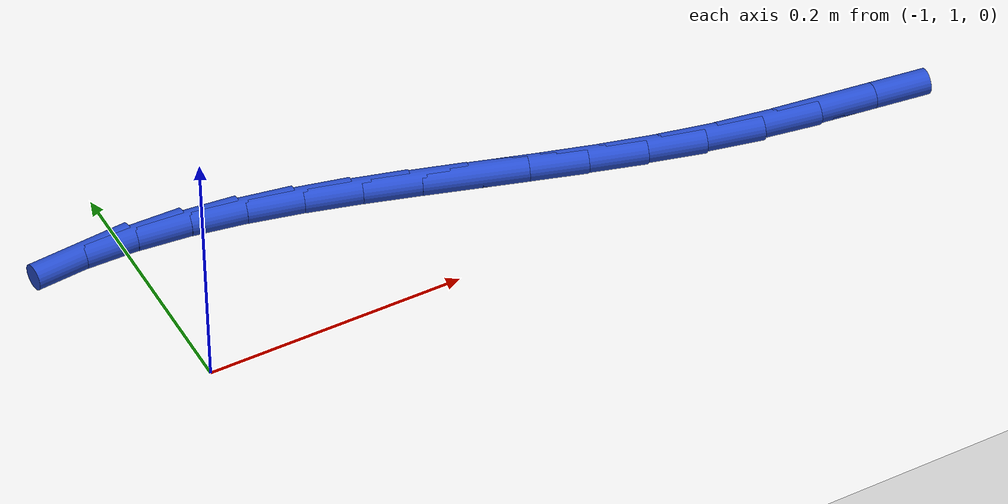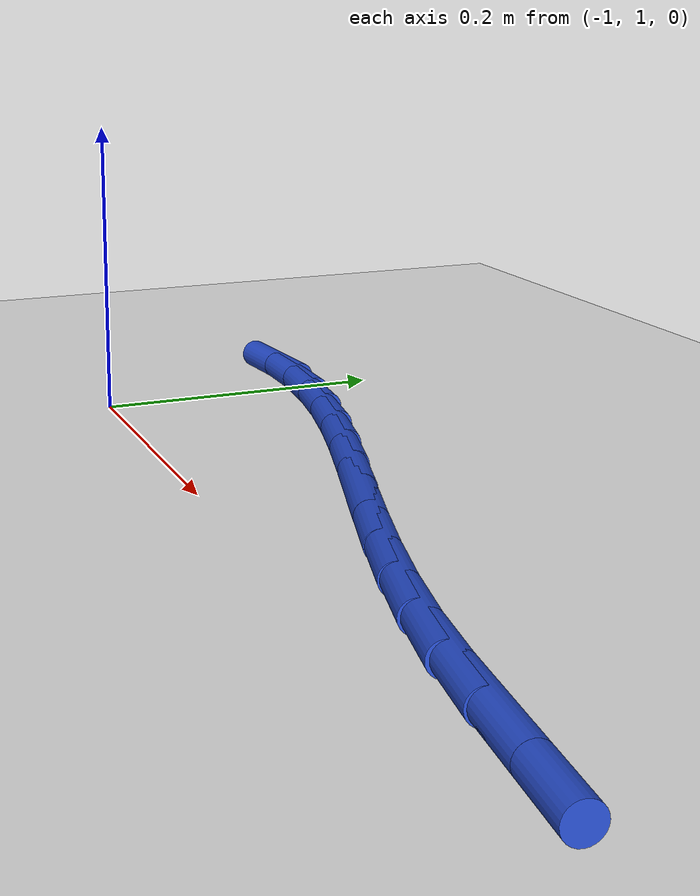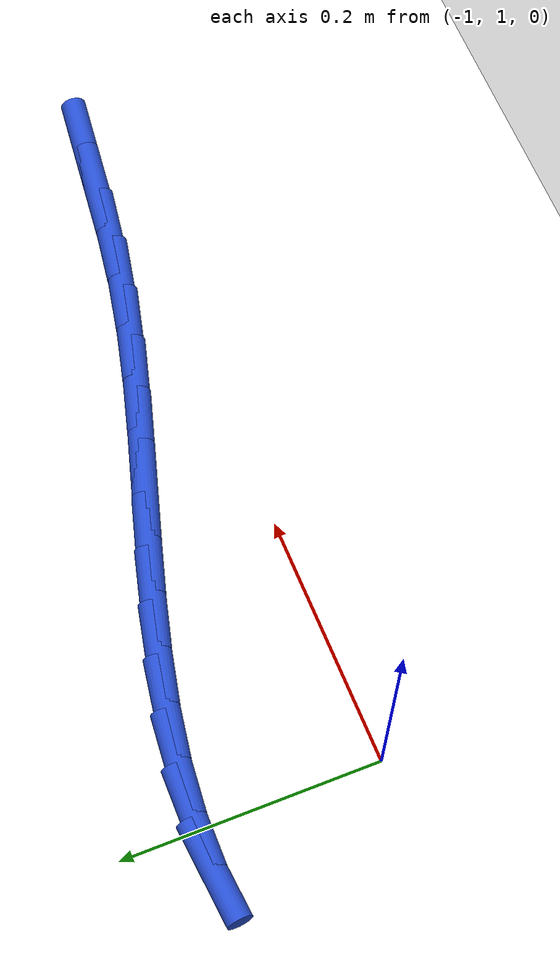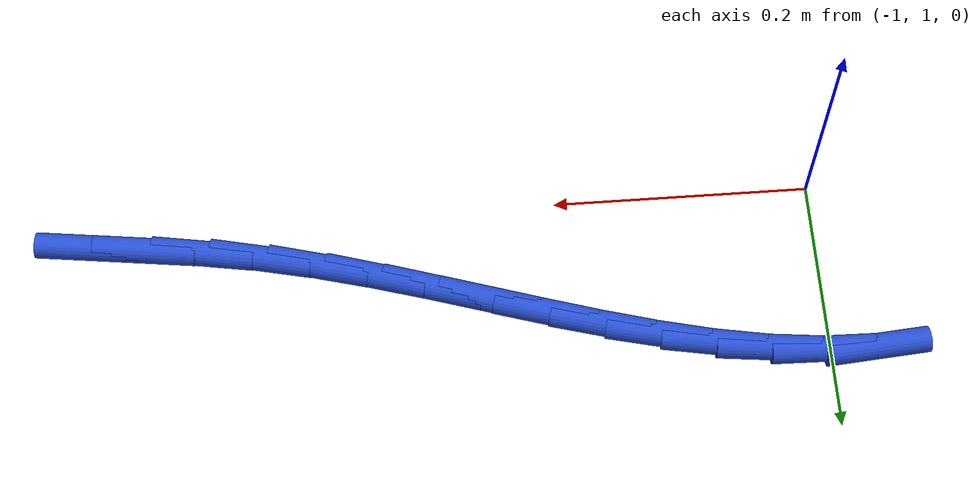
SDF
<sdf version="1.6">
 <world name="default">
  <model name="ground_plane">
   <static>1</static>
   <link name="link">
    <collision name="collision">
     <geometry><plane><normal>0 0 1</normal><size>100 100</size></plane></geometry>
     <surface><friction><ode><mu>100</mu><mu2>50</mu2></ode></friction></surface>
    </collision>
    <visual name="visual">
     <cast_shadows>0</cast_shadows>
     <geometry><plane><normal>0 0 1</normal><size>100 100</size></plane></geometry>
     <material>
      <script><uri>file://media/materials/scripts/gazebo.material</uri><name>Gazebo/WhiteGlow</name></script>
     </material>
    </visual>
   </link>
  </model>
  <model name="line">
   <link name="link_27">
    <pose>-0.4364283235287667 1.0160937508960022 0.01 0 1.57 -0.12524716902368274</pose>
    <collision name="collision">
     <geometry><cylinder><radius>0.01</radius><length>0.08</length></cylinder></geometry>
    </collision>
    <visual name="visual">
     <material>
      <script><name>Gazebo/Blue</name><uri>file://media/materials/scripts/gazebo.material</uri></script>
     </material>
     <geometry><cylinder><radius>0.01</radius><length>0.08</length></cylinder></geometry>
    </visual>
   </link>
   <link name="link_28">
    <pose>-0.48043833811379344 1.02163488529879 0.01 0 1.57 -0.1263556645864961</pose>
    <collision name="collision">
     <geometry><cylinder><radius>0.01</radius><length>0.08</length></cylinder></geometry>
    </collision>
    <visual name="visual">
     <material>
      <script><name>Gazebo/Blue</name><uri>file://media/materials/scripts/gazebo.material</uri></script>
     </material>
     <geometry><cylinder><radius>0.01</radius><length>0.08</length></cylinder></geometry>
    </visual>
   </link>
   <link name="link_29">
    <pose>-0.5252320170249823 1.0273251356947102 0.01 0 1.57 -0.16312141012108544</pose>
    <collision name="collision">
     <geometry><cylinder><radius>0.01</radius><length>0.08</length></cylinder></geometry>
    </collision>
    <visual name="visual">
     <material>
      <script><name>Gazebo/Blue</name><uri>file://media/materials/scripts/gazebo.material</uri></script>
     </material>
     <geometry><cylinder><radius>0.01</radius><length>0.08</length></cylinder></geometry>
    </visual>
   </link>
   <link name="link_30">
    <pose>-0.5699569184042637 1.034686129350251 0.01 0 1.57 -0.2158428964799083</pose>
    <collision name="collision">
     <geometry><cylinder><radius>0.01</radius><length>0.08</length></cylinder></geometry>
    </collision>
    <visual name="visual">
     <material>
      <script><name>Gazebo/Blue</name><uri>file://media/materials/scripts/gazebo.material</uri></script>
     </material>
     <geometry><cylinder><radius>0.01</radius><length>0.08</length></cylinder></geometry>
    </visual>
   </link>
   <link name="link_31">
    <pose>-0.6141288314327578 1.0443711953389343 0.01 0 1.57 -0.2575652141031595</pose>
    <collision name="collision">
     <geometry><cylinder><radius>0.01</radius><length>0.08</length></cylinder></geometry>
    </collision>
    <visual name="visual">
     <material>
      <script><name>Gazebo/Blue</name><uri>file://media/materials/scripts/gazebo.material</uri></script>
     </material>
     <geometry><cylinder><radius>0.01</radius><length>0.08</length></cylinder></geometry>
    </visual>
   </link>
   <link name="link_32">
    <pose>-0.6577594891147347 1.0558642145356778 0.01 0 1.57 -0.2863775817328964</pose>
    <collision name="collision">
     <geometry><cylinder><radius>0.01</radius><length>0.08</length></cylinder></geometry>
    </collision>
    <visual name="visual">
     <material>
      <script><name>Gazebo/Blue</name><uri>file://media/materials/scripts/gazebo.material</uri></script>
     </material>
     <geometry><cylinder><radius>0.01</radius><length>0.08</length></cylinder></geometry>
    </visual>
   </link>
   <link name="link_33">
    <pose>-0.70089560065749 1.0685665930355683 0.01 0 1.57 -0.30230978403218756</pose>
    <collision name="collision">
     <geometry><cylinder><radius>0.01</radius><length>0.08</length></cylinder></geometry>
    </collision>
    <visual name="visual">
     <material>
      <script><name>Gazebo/Blue</name><uri>file://media/materials/scripts/gazebo.material</uri></script>
     </material>
     <geometry><cylinder><radius>0.01</radius><length>0.08</length></cylinder></geometry>
    </visual>
   </link>
   <link name="link_34">
    <pose>-0.7435838752683188 1.0818797369336928 0.01 0 1.57 -0.30526546400296256</pose>
    <collision name="collision">
     <geometry><cylinder><radius>0.01</radius><length>0.08</length></cylinder></geometry>
    </collision>
    <visual name="visual">
     <material>
      <script><name>Gazebo/Blue</name><uri>file://media/materials/scripts/gazebo.material</uri></script>
     </material>
     <geometry><cylinder><radius>0.01</radius><length>0.08</length></cylinder></geometry>
    </visual>
   </link>
   <link name="link_35">
    <pose>-0.7858710221545171 1.0952050523251387 0.01 0 1.57 -0.29493348396031016</pose>
    <collision name="collision">
     <geometry><cylinder><radius>0.01</radius><length>0.08</length></cylinder></geometry>
    </collision>
    <visual name="visual">
     <material>
      <script><name>Gazebo/Blue</name><uri>file://media/materials/scripts/gazebo.material</uri></script>
     </material>
     <geometry><cylinder><radius>0.01</radius><length>0.08</length></cylinder></geometry>
    </visual>
   </link>
   <link name="link_36">
    <pose>-0.8278037505233797 1.107943945304991 0.01 0 1.57 -0.2707543948793274</pose>
    <collision name="collision">
     <geometry><cylinder><radius>0.01</radius><length>0.08</length></cylinder></geometry>
    </collision>
    <visual name="visual">
     <material>
      <script><name>Gazebo/Blue</name><uri>file://media/materials/scripts/gazebo.material</uri></script>
     </material>
     <geometry><cylinder><radius>0.01</radius><length>0.08</length></cylinder></geometry>
    </visual>
   </link>
   <link name="link_37">
    <pose>-0.8694287695822028 1.119497821968339 0.01 0 1.57 -0.23195080442011196</pose>
    <collision name="collision">
     <geometry><cylinder><radius>0.01</radius><length>0.08</length></cylinder></geometry>
    </collision>
    <visual name="visual">
     <material>
      <script><name>Gazebo/Blue</name><uri>file://media/materials/scripts/gazebo.material</uri></script>
     </material>
     <geometry><cylinder><radius>0.01</radius><length>0.08</length></cylinder></geometry>
    </visual>
   </link>
   <link name="link_38">
    <pose>-0.9107927885382815 1.1292680884102682 0.01 0 1.57 -0.1776482837785822</pose>
    <collision name="collision">
     <geometry><cylinder><radius>0.01</radius><length>0.08</length></cylinder></geometry>
    </collision>
    <visual name="visual">
     <material>
      <script><name>Gazebo/Blue</name><uri>file://media/materials/scripts/gazebo.material</uri></script>
     </material>
     <geometry><cylinder><radius>0.01</radius><length>0.08</length></cylinder></geometry>
    </visual>
   </link>
   <link name="link_39">
    <pose>-0.9519425165989112 1.1366561507258657 0.01 0 1.57 -0.10712935939208024</pose>
    <collision name="collision">
     <geometry><cylinder><radius>0.01</radius><length>0.08</length></cylinder></geometry>
    </collision>
    <visual name="visual">
     <material>
      <script><name>Gazebo/Blue</name><uri>file://media/materials/scripts/gazebo.material</uri></script>
     </material>
     <geometry><cylinder><radius>0.01</radius><length>0.08</length></cylinder></geometry>
    </visual>
   </link>
   <link name="link_40">
    <pose>-0.9929246629713877 1.1410634150102186 0.01 0 1.57 -0.020257789818603874</pose>
    <collision name="collision">
     <geometry><cylinder><radius>0.01</radius><length>0.08</length></cylinder></geometry>
    </collision>
    <visual name="visual">
     <material>
      <script><name>Gazebo/Blue</name><uri>file://media/materials/scripts/gazebo.material</uri></script>
     </material>
     <geometry><cylinder><radius>0.01</radius><length>0.08</length></cylinder></geometry>
    </visual>
   </link>
   <link name="link_41">
    <pose>-1.0337859368630058 1.1418912873584133 0.01 0 1.57 0.08189680555741315</pose>
    <collision name="collision">
     <geometry><cylinder><radius>0.01</radius><length>0.08</length></cylinder></geometry>
    </collision>
    <visual name="visual">
     <material>
      <script><name>Gazebo/Blue</name><uri>file://media/materials/scripts/gazebo.material</uri></script>
     </material>
     <geometry><cylinder><radius>0.01</radius><length>0.08</length></cylinder></geometry>
    </visual>
   </link>
  </model>
 </world>
</sdf>
